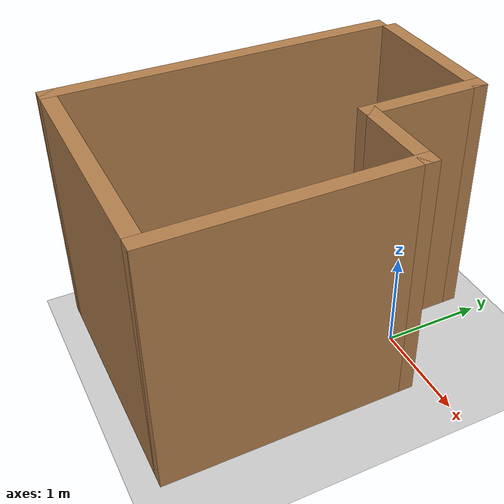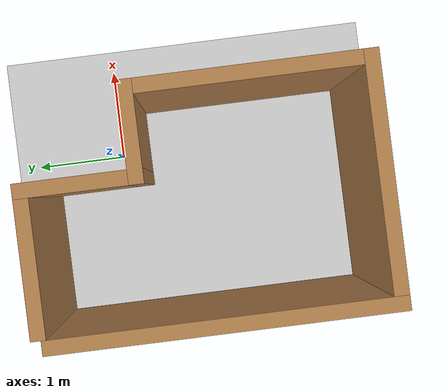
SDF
<sdf version="1.6">
 <world name="default">
  <light name="sun" type="directional">
   <pose>0 0 10 0 -0 0</pose>
   <diffuse>0.8 0.8 0.8 1</diffuse>
   <specular>0.2 0.2 0.2 1</specular>
   <attenuation>
    <range>1000</range>
    <constant>0.9</constant>
    <linear>0.01</linear>
    <quadratic>0.001</quadratic>
   </attenuation>
   <direction>-0.5 0.1 -0.9</direction>
  </light>
  <model name="ground_plane">
   <static>1</static>
   <link name="link">
    <collision name="collision">
     <geometry><plane><normal>0 0 1</normal><size>100 100</size></plane></geometry>
     <surface>
      <contact><collide_bitmask>65535</collide_bitmask></contact>
      <friction><ode><mu>100</mu><mu2>50</mu2></ode></friction>
     </surface>
    </collision>
    <visual name="visual">
     <cast_shadows>0</cast_shadows>
     <geometry><plane><normal>0 0 1</normal><size>100 100</size></plane></geometry>
     <material>
      <script><uri>file://media/materials/scripts/gazebo.material</uri><name>Gazebo/Grey</name></script>
     </material>
    </visual>
   </link>
  </model>
  <gravity>0 0 -9.8</gravity>
  <magnetic_field>6e-06 2.3e-05 -4.2e-05</magnetic_field>
  <atmosphere type="adiabatic"/>
  <physics name="default_physics" default="0" type="ode">
   <max_step_size>0.001</max_step_size>
   <real_time_factor>1</real_time_factor>
   <real_time_update_rate>1000</real_time_update_rate>
  </physics>
  <scene><ambient>0.4 0.4 0.4 1</ambient><background>0.7 0.7 0.7 1</background><shadows>1</shadows></scene>
  <spherical_coordinates>
   <surface_model>EARTH_WGS84</surface_model>
   <latitude_deg>0</latitude_deg>
   <longitude_deg>0</longitude_deg>
   <elevation>0</elevation>
   <heading_deg>0</heading_deg>
  </spherical_coordinates>
  <model name="con_mic.world">
   <pose>-0.616131 -0.868297 0 0 -0 0</pose>
   <link name="Wall_10">
    <collision name="Wall_10_Collision">
     <geometry><box><size>1 0.15 2.5</size></box></geometry>
     <pose>0 0 1.25 0 -0 0</pose>
    </collision>
    <visual name="Wall_10_Visual">
     <pose>0 0 1.25 0 -0 0</pose>
     <geometry><box><size>1 0.15 2.5</size></box></geometry>
     <material>
      <script><uri>file://media/materials/scripts/gazebo.material</uri><name>Gazebo/Wood</name></script>
      <ambient>1 1 1 1</ambient>
     </material>
     <meta><layer>0</layer></meta>
    </visual>
    <pose>0.75 0.625 0 0 -0 3.14159</pose>
   </link>
   <link name="Wall_11">
    <collision name="Wall_11_Collision">
     <geometry><box><size>1.25 0.15 2.5</size></box></geometry>
     <pose>0 0 1.25 0 -0 0</pose>
    </collision>
    <visual name="Wall_11_Visual">
     <pose>0 0 1.25 0 -0 0</pose>
     <geometry><box><size>1.25 0.15 2.5</size></box></geometry>
     <material>
      <script><uri>file://media/materials/scripts/gazebo.material</uri><name>Gazebo/Wood</name></script>
      <ambient>1 1 1 1</ambient>
     </material>
     <meta><layer>0</layer></meta>
    </visual>
    <pose>0.325 1.175 0 0 -0 1.5708</pose>
   </link>
   <link name="Wall_12">
    <collision name="Wall_12_Collision">
     <geometry><box><size>1.5 0.15 2.5</size></box></geometry>
     <pose>0 0 1.25 0 -0 0</pose>
    </collision>
    <visual name="Wall_12_Visual">
     <pose>0 0 1.25 0 -0 0</pose>
     <geometry><box><size>1.5 0.15 2.5</size></box></geometry>
     <material>
      <script><uri>file://media/materials/scripts/gazebo.material</uri><name>Gazebo/Wood</name></script>
      <ambient>1 1 1 1</ambient>
     </material>
     <meta><layer>0</layer></meta>
    </visual>
    <pose>-0.35 1.725 0 0 -0 3.14159</pose>
   </link>
   <link name="Wall_7">
    <collision name="Wall_7_Collision">
     <geometry><box><size>3.5 0.15 2.5</size></box></geometry>
     <pose>0 0 1.25 0 -0 0</pose>
    </collision>
    <visual name="Wall_7_Visual">
     <pose>0 0 1.25 0 -0 0</pose>
     <geometry><box><size>3.5 0.15 2.5</size></box></geometry>
     <material>
      <script><uri>file://media/materials/scripts/gazebo.material</uri><name>Gazebo/Wood</name></script>
      <ambient>1 1 1 1</ambient>
     </material>
     <meta><layer>0</layer></meta>
    </visual>
    <pose>-1.175 -0.05 0 0 -0 -1.5708</pose>
   </link>
   <link name="Wall_8">
    <collision name="Wall_8_Collision">
     <geometry><box><size>2.5 0.15 2.5</size></box></geometry>
     <pose>0 0 1.25 0 -0 0</pose>
    </collision>
    <visual name="Wall_8_Visual">
     <pose>0 0 1.25 0 -0 0</pose>
     <geometry><box><size>2.5 0.15 2.5</size></box></geometry>
     <material>
      <script><uri>file://media/materials/scripts/gazebo.material</uri><name>Gazebo/Wood</name></script>
      <ambient>1 1 1 1</ambient>
     </material>
     <meta><layer>0</layer></meta>
    </visual>
    <pose>0 -1.725 0 0 -0 0</pose>
   </link>
   <link name="Wall_9">
    <collision name="Wall_9_Collision">
     <geometry><box><size>2.5 0.15 2.5</size></box></geometry>
     <pose>0 0 1.25 0 -0 0</pose>
    </collision>
    <visual name="Wall_9_Visual">
     <pose>0 0 1.25 0 -0 0</pose>
     <geometry><box><size>2.5 0.15 2.5</size></box></geometry>
     <material>
      <script><uri>file://media/materials/scripts/gazebo.material</uri><name>Gazebo/Wood</name></script>
      <ambient>1 1 1 1</ambient>
     </material>
     <meta><layer>0</layer></meta>
    </visual>
    <pose>1.175 -0.55 0 0 -0 1.5708</pose>
   </link>
   <static>1</static>
  </model>
 </world>
</sdf>
